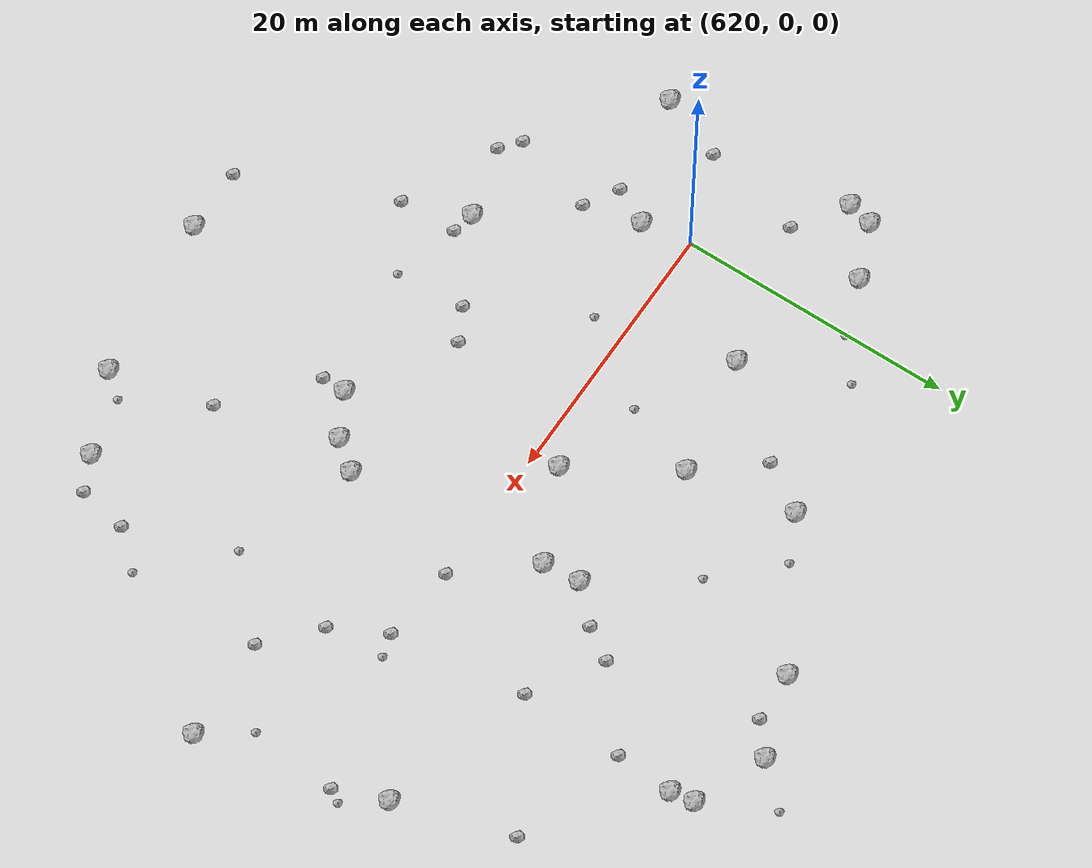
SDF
<sdf version="1.6">
 <world name="default">
  <include><uri>model://sun</uri></include>
  <model name="rock1_16_3">
   <include><uri>model://rock1</uri><pose>645.7024115930487 4.965609127291565 0.5 0 0 0</pose></include>
  </model>
  <model name="rock1_16_4">
   <include><uri>model://rock1</uri><pose>654.6730031368734 20.820655927076643 0.5 0 0 0</pose></include>
  </model>
  <model name="rock1_16_5">
   <include><uri>model://rock1</uri><pose>626.6329704984464 -13.563645187113721 0.5 0 0 0</pose></include>
  </model>
  <model name="rock1_16_6">
   <include><uri>model://rock1</uri><pose>611.6082665549619 -7.2216036674569715 0.5 0 0 0</pose></include>
  </model>
  <model name="rock1_16_7">
   <include><uri>model://rock1</uri><pose>643.509722687928 22.744269823764974 0.5 0 0 0</pose></include>
  </model>
  <model name="rock1_16_8">
   <include><uri>model://rock1</uri><pose>647.2532693363025 -9.463237326950807 0.5 0 0 0</pose></include>
  </model>
  <model name="rock1_16_9">
   <include><uri>model://rock1</uri><pose>655.8443911112156 -24.653720180563973 0.5 0 0 0</pose></include>
  </model>
  <model name="rock1_16_10">
   <include><uri>model://rock1</uri><pose>611.6439926361552 7.505985407522701 0.5 0 0 0</pose></include>
  </model>
  <model name="rock1_16_11">
   <include><uri>model://rock1</uri><pose>633.3092478331424 16.874859771918672 0.5 0 0 0</pose></include>
  </model>
  <model name="rock1_16_12">
   <include><uri>model://rock1</uri><pose>639.2261891464372 1.8957429309756506 0.5 0 0 0</pose></include>
  </model>
  <model name="rock1_16_13">
   <include><uri>model://rock1</uri><pose>634.7308743940681 9.123665510401679 0.5 0 0 0</pose></include>
  </model>
  <model name="rock1_16_14">
   <include><uri>model://rock1</uri><pose>625.9853237622842 7.51779134319122 0.5 0 0 0</pose></include>
  </model>
  <model name="rock1_16_15">
   <include><uri>model://rock1</uri><pose>612.1056102574333 9.375912379027241 0.5 0 0 0</pose></include>
  </model>
  <model name="rock1_16_16">
   <include><uri>model://rock1</uri><pose>637.8941105358363 -28.894645044119468 0.5 0 0 0</pose></include>
  </model>
  <model name="rock1_16_17">
   <include><uri>model://rock1</uri><pose>654.3902505445955 22.51298770822492 0.5 0 0 0</pose></include>
  </model>
  <model name="rock1_16_18">
   <include><uri>model://rock1</uri><pose>645.6305832561743 -11.523203322229783 0.5 0 0 0</pose></include>
  </model>
  <model name="rock1_16_19">
   <include><uri>model://rock1</uri><pose>620.7146858939657 -3.6190489526214655 0.5 0 0 0</pose></include>
  </model>
  <model name="rock1_16_20">
   <include><uri>model://rock1</uri><pose>668.5484175085027 -7.269709958162938 0.5 0 0 0</pose></include>
  </model>
  <model name="rock1_16_21">
   <include><uri>model://rock1</uri><pose>645.4646477576327 7.676145263802354 0.5 0 0 0</pose></include>
  </model>
  <model name="rock1_16_22">
   <include><uri>model://rock1</uri><pose>665.3139667508502 6.0143976304626605 0.5 0 0 0</pose></include>
  </model>
  <model name="rock1_16_23">
   <include><uri>model://rock1</uri><pose>642.5324238813865 -13.239119236628373 0.5 0 0 0</pose></include>
  </model>
  <model name="rock1_16_24">
   <include><uri>model://rock1</uri><pose>616.1360937453212 11.08370825135291 0.5 0 0 0</pose></include>
  </model>
  <model name="rock1_16_25">
   <include><uri>model://rock1</uri><pose>649.2920769053793 24.699921606090662 0.5 0 0 0</pose></include>
  </model>
  <model name="rock1_16_26">
   <include><uri>model://rock1</uri><pose>650.058888582679 -27.35436977373299 0.5 0 0 0</pose></include>
  </model>
  <model name="rock2_16_0">
   <include><uri>model://rock2</uri><pose>628.3704174342914 -18.203662888413202 0.3 0 0 0</pose></include>
  </model>
  <model name="rock2_16_1">
   <include><uri>model://rock2</uri><pose>642.449607469053 -14.973565554061912 0.3 0 0 0</pose></include>
  </model>
  <model name="rock2_16_2">
   <include><uri>model://rock2</uri><pose>633.0414244953093 -28.9933285613315 0.3 0 0 0</pose></include>
  </model>
  <model name="rock2_16_3">
   <include><uri>model://rock2</uri><pose>655.4318140049737 -0.5607352710440416 0.3 0 0 0</pose></include>
  </model>
  <model name="rock2_16_4">
   <include><uri>model://rock2</uri><pose>632.7397051327074 -10.18788396519123 0.3 0 0 0</pose></include>
  </model>
  <model name="rock2_16_5">
   <include><uri>model://rock2</uri><pose>619.2791541243614 -6.252728810843514 0.3 0 0 0</pose></include>
  </model>
  <model name="rock2_16_6">
   <include><uri>model://rock2</uri><pose>621.7128606198555 -7.712497631762421 0.3 0 0 0</pose></include>
  </model>
  <model name="rock2_16_7">
   <include><uri>model://rock2</uri><pose>661.0326909814501 -7.578439145242687 0.3 0 0 0</pose></include>
  </model>
  <model name="rock2_16_8">
   <include><uri>model://rock2</uri><pose>649.1819768502445 12.314945958260708 0.3 0 0 0</pose></include>
  </model>
  <model name="rock2_16_9">
   <include><uri>model://rock2</uri><pose>662.7341112750172 14.332588165092595 0.3 0 0 0</pose></include>
  </model>
  <model name="rock2_16_10">
   <include><uri>model://rock2</uri><pose>615.2746753418896 5.06024821922589 0.3 0 0 0</pose></include>
  </model>
  <model name="rock2_16_11">
   <include><uri>model://rock2</uri><pose>658.2936298413266 -23.447242308498616 0.3 0 0 0</pose></include>
  </model>
  <model name="rock2_16_12">
   <include><uri>model://rock2</uri><pose>654.1276961870118 9.171979882678457 0.3 0 0 0</pose></include>
  </model>
  <model name="rock2_16_13">
   <include><uri>model://rock2</uri><pose>631.0415492852102 13.51314681776725 0.3 0 0 0</pose></include>
  </model>
  <model name="rock2_16_14">
   <include><uri>model://rock2</uri><pose>621.2826534832685 -15.039968051919674 0.3 0 0 0</pose></include>
  </model>
  <model name="rock2_16_15">
   <include><uri>model://rock2</uri><pose>654.3515838933365 16.666471083466348 0.3 0 0 0</pose></include>
  </model>
  <model name="rock2_16_16">
   <include><uri>model://rock2</uri><pose>666.6659053356788 2.385462042197119 0.3 0 0 0</pose></include>
  </model>
  <model name="rock2_16_17">
   <include><uri>model://rock2</uri><pose>647.0799479627419 22.927958594956394 0.3 0 0 0</pose></include>
  </model>
  <model name="rock2_16_18">
   <include><uri>model://rock2</uri><pose>657.4307907781873 -4.3992953143985964 0.3 0 0 0</pose></include>
  </model>
  <model name="rock2_16_19">
   <include><uri>model://rock2</uri><pose>658.9698887569566 -19.87174160449361 0.3 0 0 0</pose></include>
  </model>
  <model name="rock2_16_20">
   <include><uri>model://rock2</uri><pose>635.1456207120293 -8.919377626983579 0.3 0 0 0</pose></include>
  </model>
  <model name="rock2_16_21">
   <include><uri>model://rock2</uri><pose>648.2196291283025 -19.947972735421008 0.3 0 0 0</pose></include>
  </model>
  <model name="rock2_16_22">
   <include><uri>model://rock2</uri><pose>619.8546783645454 -13.868792227437996 0.3 0 0 0</pose></include>
  </model>
  <model name="rock2_16_23">
   <include><uri>model://rock2</uri><pose>613.4342632242972 -2.4058309489194265 0.3 0 0 0</pose></include>
  </model>
  <model name="rock2_16_24">
   <include><uri>model://rock2</uri><pose>649.8465500301168 0.01856800974068662 0.3 0 0 0</pose></include>
  </model>
  <model name="rock2_16_25">
   <include><uri>model://rock2</uri><pose>628.2541966361083 -13.912590401019209 0.3 0 0 0</pose></include>
  </model>
  <model name="rock2_16_26">
   <include><uri>model://rock2</uri><pose>647.7172127045309 10.073470212445095 0.3 0 0 0</pose></include>
  </model>
  <model name="rock3_16_0">
   <include><uri>model://rock3</uri><pose>657.0697473898848 -0.15856385467042244 0.2 0 0 0</pose></include>
  </model>
  <model name="rock3_16_1">
   <include><uri>model://rock3</uri><pose>640.6570989784758 14.32626509017723 0.2 0 0 0</pose></include>
  </model>
  <model name="rock3_16_2">
   <include><uri>model://rock3</uri><pose>636.532669571514 18.48452179549097 0.2 0 0 0</pose></include>
  </model>
  <model name="rock3_16_3">
   <include><uri>model://rock3</uri><pose>633.103394102284 -15.317407214280468 0.2 0 0 0</pose></include>
  </model>
  <model name="rock3_16_4">
   <include><uri>model://rock3</uri><pose>666.1029344569165 -4.004623120889086 0.2 0 0 0</pose></include>
  </model>
  <model name="rock3_16_5">
   <include><uri>model://rock3</uri><pose>656.0469470666644 -12.400080847819819 0.2 0 0 0</pose></include>
  </model>
  <model name="rock3_16_6">
   <include><uri>model://rock3</uri><pose>667.2100933422372 3.265065568807472 0.2 0 0 0</pose></include>
  </model>
  <model name="rock3_16_7">
   <include><uri>model://rock3</uri><pose>661.2525779526363 -17.38036589927136 0.2 0 0 0</pose></include>
  </model>
  <model name="rock3_16_8">
   <include><uri>model://rock3</uri><pose>632.7206413202412 3.688465695897662 0.2 0 0 0</pose></include>
  </model>
  <model name="rock3_16_9">
   <include><uri>model://rock3</uri><pose>628.4135967515169 -2.3681902866018802 0.2 0 0 0</pose></include>
  </model>
  <model name="rock3_16_10">
   <include><uri>model://rock3</uri><pose>620.1625404195968 12.522552541674408 0.2 0 0 0</pose></include>
  </model>
  <model name="rock3_16_11">
   <include><uri>model://rock3</uri><pose>623.0417896999597 14.859937490985537 0.2 0 0 0</pose></include>
  </model>
  <model name="rock3_16_12">
   <include><uri>model://rock3</uri><pose>651.8237155311056 27.459280452478573 0.2 0 0 0</pose></include>
  </model>
  <model name="rock3_16_13">
   <include><uri>model://rock3</uri><pose>651.4308825062296 -25.615780689525643 0.2 0 0 0</pose></include>
  </model>
 </world>
</sdf>
